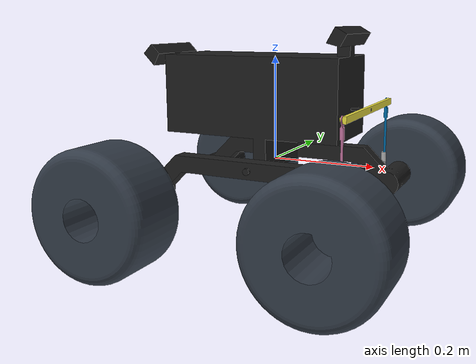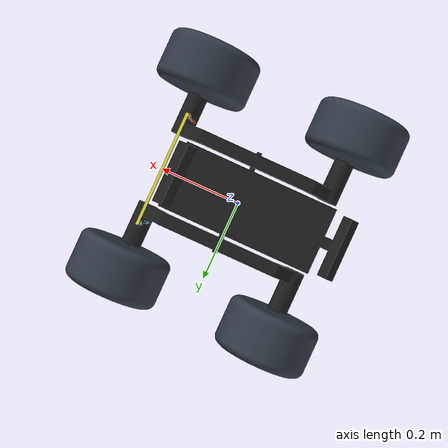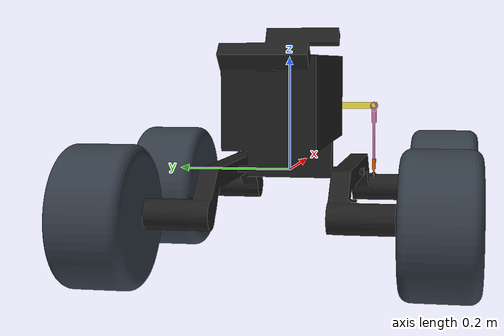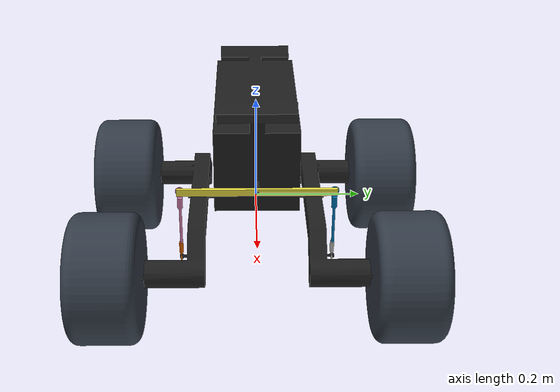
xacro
<?xml version="1.0"?>
<robot name="pathfinder" xmlns:xacro="http://ros.org/wiki/xacro">

    <xacro:include filename="$(find pathfinder_description)/urdf/materials.xacro" />
    <xacro:include filename="$(find pathfinder_description)/urdf/skid_steer.gazebo" />
    <xacro:include filename="$(find pathfinder_description)/urdf/macro.xacro" />

    <gazebo>
    	<plugin name="p3d_base_controller" filename="libgazebo_ros_p3d.so">
       	    <alwaysOn>true</alwaysOn>
            <updateRate>100.0</updateRate>
            <bodyName>base_link</bodyName>
            <topicName>odom</topicName>
            <gaussianNoise>0.0</gaussianNoise>
            <frameName>odom</frameName>
            <xyzOffsets>0 0 0</xyzOffsets>
            <rpyOffsets>0 0 0</rpyOffsets>
        </plugin>
    </gazebo>

    <link name="base_link">
      <inertial>
          <mass value="10"/>
          <origin xyz="0 0 0" rpy="0 0 0"/>
          <inertia ixx="0.2" ixy="0.0" ixz="0.0" iyy="0.4" iyz="0.0" izz="0.2"/>
      </inertial>

      <collision>
        <origin xyz="0 0 0" rpy="0 0 0"/>
          <geometry>
              <box size="0.15 0.40 0.15"/>
          </geometry>
      </collision>

      <visual>
        <origin xyz="0 0 0" rpy="0 0 0"/>
          <geometry>
            <mesh filename="package://pathfinder_description/meshes/base_link2.dae" />
              <!--box size= "0.40 0.15 0.15"/-->
          </geometry>
      </visual>
  </link>

        <!-- Rockers-->
        <xacro:left_link_rocker name="left_rocker" />
        <xacro:left_joint_rocker name="base_to_left_rocker" child="left_rocker" origin_xyz="0 0.11 0" />

        <xacro:right_link_rocker name="right_rocker" />
        <xacro:right_joint_rocker name="base_to_right_rocker" child="right_rocker" origin_xyz="0 -0.11 0" />

        <!-- bar-->
        <xacro:link_diff_bar name="diff_bar" />
        <xacro:joint_diff_bar name="base_to_diff_bar" child="diff_bar" origin_xyz="0.183 0 0.10744" />

        <!-- rods-->
        <!--Right rod-->
        <xacro:link_rod name="right_rod" />
        <xacro:joint_rod name="bar_to_right_rod" child="right_rod" origin_xyz="0 0.135 0.0" />
        <xacro:link_bottom_rod name="bottom_right_rod" />
        <xacro:joint_right_bottom_rod name="rocker_to_right_rod" child="bottom_right_rod" origin_xyz="0.183 -0.025 -0.03" />
        <!--xacro:joint_rod2 name="right_rocker_to_right_rod" child="right_rod" origin_xyz="0 0.135 -0.06732" /-->

        <!--Left rod-->
        <xacro:link_rod name="left_rod" />
        <xacro:joint_rod name="bar_to_left_rod" child="left_rod" origin_xyz="0 -0.135 0.0" />
        <xacro:link_bottom_rod name="bottom_left_rod" />
        <xacro:joint_left_bottom_rod name="rocker_to_left_rod" child="bottom_left_rod" origin_xyz="0.183 0.025 -0.03" />
        <!--xacro:joint_rod3 name="left_rocker_to_left_rod" child="left_rod" origin_xyz="0 0.135 -0.06732" /-->

        <!-- Wheels-->
        <!-- Front left Wheel Link-->
        <xacro:left_link_wheel name="front_left_wheel" />
        <xacro:left_joint_wheel name="base_to_front_left" child="front_left_wheel" origin_xyz="0.203 0.16 -0.06" />

        <!-- Front right Wheel Link-->
        <xacro:right_link_wheel name="front_right_wheel" />
        <xacro:right_joint_wheel name="base_to_front_right" child="front_right_wheel" origin_xyz="0.203 -0.16 -0.06" />

        <!-- Back left Wheel Link-->
        <xacro:left_link_wheel name="back_left_wheel" />
        <xacro:left_joint_wheel name="base_to_back_left" child="back_left_wheel" origin_xyz="-0.203 0.16 -0.06" />
        <!-- Back right Wheel Link-->
        <xacro:right_link_wheel name="back_right_wheel" />
        <xacro:right_joint_wheel name="base_to_back_right" child="back_right_wheel" origin_xyz="-0.203 -0.16 -0.06" />

        <!-- sensors-->
  </robot>

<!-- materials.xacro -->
<robot xmlns:xacro="http://www.ros.org/wiki/xacro">
  <material name="black">
    <color rgba="0.0 0.0 0.0 1.0"/>
  </material>
  <material name="blue">
    <color rgba="0.203125 0.23828125 0.28515625 1.0"/>
  </material>
  <material name="green">
    <color rgba="0.0 0.8 0.0 1.0"/>
  </material>
  <material name="darkgrey">
    <color rgba="0.1 0.1 0.1 1.0"/>
  </material>
  <material name="orange">
    <color rgba="1.0 0.423529411765 0.0392156862745 1.0"/>
  </material>
  <material name="brown">
    <color rgba="0.870588235294 0.811764705882 0.764705882353 1.0"/>
  </material>
  <material name="red">
    <color rgba="0.80078125 0.12890625 0.1328125 1.0"/>
  </material>
  <material name="white">
    <color rgba="1.0 1.0 1.0 1.0"/>
  </material>
</robot>

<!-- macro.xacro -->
<robot xmlns:xacro="http://www.ros.org/wiki/xacro">

    <xacro:macro name="left_link_wheel" params="name">
        <link name="${name}">
          <visual>
              <geometry>
                  <!--cylinder length="0.1" radius="0.1"/-->
                  <mesh filename="package://pathfinder_description/meshes/wheel.dae" />
              </geometry>
              <origin xyz="0 0 0" rpy="-1.571 0 0"/>
              <material name="blue"/>
          </visual>
          <inertial>
              <mass value="2"/>
              <inertia ixx="0.6" ixy="0.0" ixz="0.0" iyy="0.2" iyz="0.0" izz="0.2"/>
              <origin xyz="0 0 0" rpy="-1.571 0 0"/>
          </inertial>
          <collision>
              <geometry>
                  <cylinder length="0.12" radius="0.12"/>
              </geometry>
              <origin xyz="0 0 0" rpy="-1.571 0 0"/>
          </collision>
        </link>
    </xacro:macro>

    <xacro:macro name="right_link_wheel" params="name">
        <link name="${name}">
          <visual>
              <geometry>
                  <!--cylinder length="0.1" radius="0.1"/-->
                  <mesh filename="package://pathfinder_description/meshes/wheel.dae" />
              </geometry>
              <origin xyz="0 0 0" rpy="1.571 0 0"/>
              <material name="blue"/>
          </visual>
          <inertial>
              <mass value="2"/>
              <inertia ixx="0.6" ixy="0.0" ixz="0.0" iyy="0.2" iyz="0.0" izz="0.2"/>
              <origin xyz="0 0 0" rpy="1.571 0 0"/>
          </inertial>
          <collision>
              <geometry>
                  <cylinder length="0.12" radius="0.12"/>
              </geometry>
              <origin xyz="0 0 0" rpy="1.571 0 0"/>
          </collision>
        </link>
    </xacro:macro>

    <xacro:macro name="left_joint_wheel" params="name child origin_xyz">
      <joint name="${name}" type="continuous">
        <origin rpy="0 0 0" xyz="${origin_xyz}"/>
        <child link="${child}"/>
        <parent link="left_rocker"/>
        <axis rpy="0 0 0" xyz="0 1 0"/>
        <limit effort="10000" velocity="1000"/>
        <joint_properties damping="1.0" friction="1.0"/>
      </joint>
    </xacro:macro>

    <xacro:macro name="right_joint_wheel" params="name child origin_xyz">
      <joint name="${name}" type="continuous">
        <origin rpy="0 0 0" xyz="${origin_xyz}"/>
        <child link="${child}"/>
        <parent link="right_rocker"/>
        <axis rpy="0 0 0" xyz="0 1 0"/>
        <limit effort="10000" velocity="1000"/>
        <joint_properties damping="1.0" friction="1.0"/>
      </joint>
    </xacro:macro>

    <xacro:macro name="left_link_rocker" params="name">
        <link name="${name}">
          <visual>
              <geometry>
                  <!--cylinder length="0.1" radius="0.1"/-->
                  <mesh filename="package://pathfinder_description/meshes/left_rocker_centered.dae" />
              </geometry>
              <origin xyz="0 0 0" rpy="0 0 0"/>
          </visual>
          <inertial>
              <mass value="2"/>
              <inertia ixx="0.6" ixy="0.0" ixz="0.0" iyy="0.2" iyz="0.0" izz="0.2"/>
              <origin xyz="0 0 0" rpy="0 0 0"/>
          </inertial>
          <collision>
              <geometry>
                  <cylinder length="0.3" radius="0.1"/>
              </geometry>
              <origin xyz="0 0 0" rpy="0 0 0"/>
          </collision>
        </link>
    </xacro:macro>
    <gazebo reference="left_rocker">
      <material>Gazebo/FlatBlack</material>
    </gazebo>
    <gazebo reference="right_rocker">
      <material>Gazebo/FlatBlack</material>
    </gazebo>
    <xacro:macro name="left_joint_rocker" params="name child origin_xyz">
      <joint name="${name}" type="revolute">
        <origin rpy="0 0 0" xyz="${origin_xyz}"/>
        <child link="${child}"/>
        <parent link="base_link"/>
        <axis rpy="0 0 0" xyz="0 1 0"/>
        <limit lower="-0.28" upper="0.28" effort="10000" velocity="1000"/>
        <joint_properties damping="1.0" friction="1.0"/>
      </joint>
    </xacro:macro>

    <xacro:macro name="right_link_rocker" params="name">
        <link name="${name}">
          <visual>
              <geometry>
                  <!--cylinder length="0.1" radius="0.1"/-->
                  <mesh filename="package://pathfinder_description/meshes/right_rocker_centered.dae" />
              </geometry>
              <origin xyz="0 0 0" rpy="0 0 0"/>
          </visual>
          <inertial>
              <mass value="2"/>
              <inertia ixx="0.6" ixy="0.0" ixz="0.0" iyy="0.2" iyz="0.0" izz="0.2"/>
              <origin xyz="0 0 0" rpy="0 0 0"/>
          </inertial>
          <collision>
              <geometry>
                  <cylinder length="0.3" radius="0.1"/>
              </geometry>
              <origin xyz="0 0 0" rpy="0 0 0"/>
          </collision>
        </link>
    </xacro:macro>

    <xacro:macro name="right_joint_rocker" params="name child origin_xyz">
      <joint name="${name}" type="revolute">
        <origin rpy="0 0 0" xyz="${origin_xyz}"/>
        <child link="${child}"/>
        <parent link="base_link"/>
        <axis rpy="0 0 0" xyz="0 1 0"/>
        <limit lower="-0.28" upper="0.28" effort="10000" velocity="1000"/>
        <joint_properties damping="1.0" friction="1.0"/>
      </joint>
    </xacro:macro>

    <xacro:macro name="link_diff_bar" params="name">
        <link name="${name}">
          <visual>
              <geometry>
                  <!--cylinder length="0.1" radius="0.1"/-->
                  <mesh filename="package://pathfinder_description/meshes/diff_bar_link.dae" />
              </geometry>
              <origin xyz="0 0 0" rpy="0 0 0"/>
          </visual>
          <inertial>
              <mass value="0.01"/>
              <inertia ixx="0.6" ixy="0.0" ixz="0.0" iyy="0.2" iyz="0.0" izz="0.2"/>
              <origin xyz="0 0 0" rpy="0 0 0"/>
          </inertial>
          <collision>
              <geometry>
                  <cylinder length="0.1" radius="0.1"/>
              </geometry>
              <origin xyz="0 0 0" rpy="0 0 0"/>
          </collision>
        </link>
    </xacro:macro>

    <xacro:macro name="joint_diff_bar" params="name child origin_xyz">
      <joint name="${name}" type="continuous">
        <origin rpy="0 0 0" xyz="${origin_xyz}"/>
        <child link="${child}"/>
        <parent link="base_link"/>
        <axis rpy="0 0 0" xyz="1 0 0"/>
        <limit effort="10000" velocity="1000"/>
        <joint_properties damping="1.0" friction="0.5"/>
      </joint>
    </xacro:macro>

    <xacro:macro name="link_rod" params="name">
        <link name="${name}">
          <visual>
              <geometry>
                  <!--cylinder length="0.1" radius="0.1"/-->
                  <mesh filename="package://pathfinder_description/meshes/diff_rod_upper.dae" />
              </geometry>
              <origin xyz="0 0 0" rpy="0 0 -1.571"/>
          </visual>
          <inertial>
              <mass value="0.01"/>
              <inertia ixx="0.6" ixy="0.0" ixz="0.0" iyy="0.2" iyz="0.0" izz="0.2"/>
              <origin xyz="0 0 0" rpy="0 0 0"/>
          </inertial>
          <collision>
              <geometry>
                  <cylinder length="0.1" radius="0.1"/>
              </geometry>
              <origin xyz="0 0 0" rpy="0 0 0"/>
          </collision>
        </link>
    </xacro:macro>

    <xacro:macro name="joint_rod" params="name child origin_xyz">
      <joint name="${name}" type="continuous">
        <origin rpy="0 0 0" xyz="${origin_xyz}"/>
        <child link="${child}"/>
        <parent link="diff_bar"/>
        <axis rpy="0 0 0" xyz="1 0 0"/>
        <limit effort="10000" velocity="1000"/>
        <joint_properties damping="1.0" friction="1.0"/>
      </joint>
    </xacro:macro>

    <xacro:macro name="link_bottom_rod" params="name">
        <link name="${name}">
          <visual>
              <geometry>
                  <!--cylinder length="0.1" radius="0.1"/-->
                  <mesh filename="package://pathfinder_description/meshes/diff_rod_bottom.dae" />
              </geometry>
              <origin xyz="0 0 0" rpy="0 0 -1.571"/>
          </visual>
          <inertial>
              <mass value="0.01"/>
              <inertia ixx="0.6" ixy="0.0" ixz="0.0" iyy="0.2" iyz="0.0" izz="0.2"/>
              <origin xyz="0 0 0" rpy="0 0 0"/>
          </inertial>
          <collision>
              <geometry>
                  <cylinder length="0.1" radius="0.1"/>
              </geometry>
              <origin xyz="0 0 0" rpy="0 0 0"/>
          </collision>
        </link>
    </xacro:macro>

    <xacro:macro name="joint_right_bottom_rod" params="name child origin_xyz">
      <joint name="${name}" type="continuous">
        <origin rpy="0 0 0" xyz="${origin_xyz}"/>
        <child link="${child}"/>
        <parent link="right_rocker"/>
        <axis rpy="0 0 0" xyz="0 1 0"/>
        <limit effort="10000" velocity="1000"/>
        <joint_properties damping="1.0" friction="1.0"/>
      </joint>
    </xacro:macro>

    <xacro:macro name="joint_left_bottom_rod" params="name child origin_xyz">
      <joint name="${name}" type="continuous">
        <origin rpy="0 0 0" xyz="${origin_xyz}"/>
        <child link="${child}"/>
        <parent link="left_rocker"/>
        <axis rpy="0 0 0" xyz="0 1 0"/>
        <limit effort="10000" velocity="1000"/>
        <joint_properties damping="1.0" friction="1.0"/>
      </joint>
    </xacro:macro>

    <gazebo>
      <joint name="leftone" type="fixed">
        <pose>-0 0 0.03 0 0 0</pose>
        <parent>left_rod</parent>
        <child>bottom_right_rod</child>
      </joint>
    </gazebo>

    <gazebo>
      <joint name="rightone" type="fixed">
        <pose>-0 0 0.03 0 0 0</pose>
        <parent>right_rod</parent>
        <child>bottom_left_rod</child>
      </joint>
    </gazebo>

</robot>
